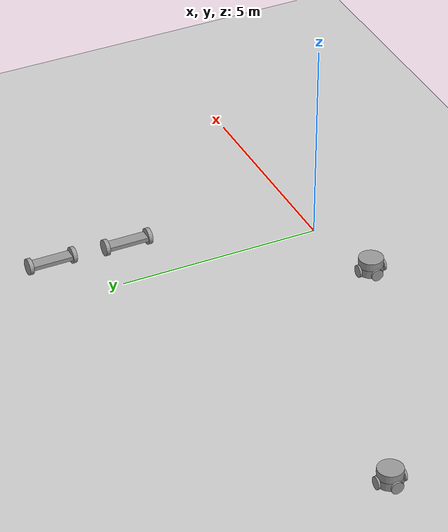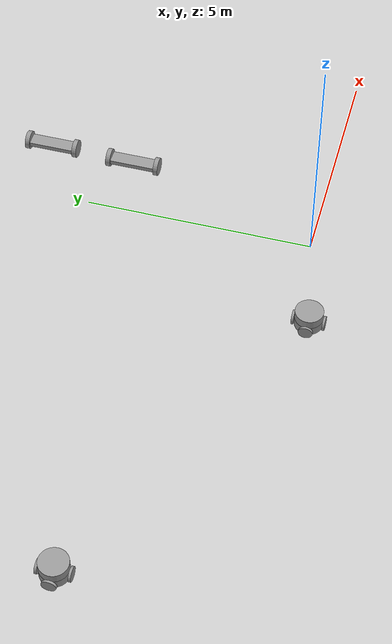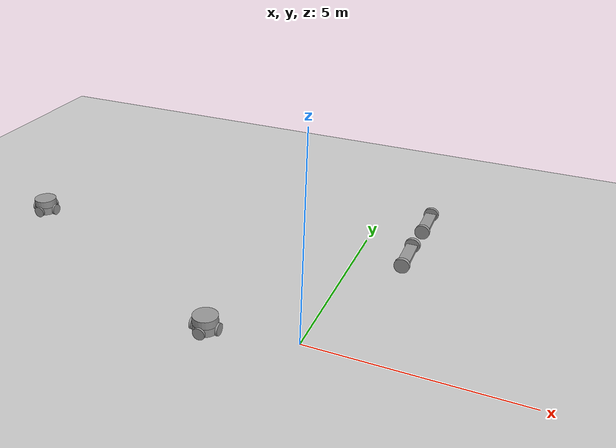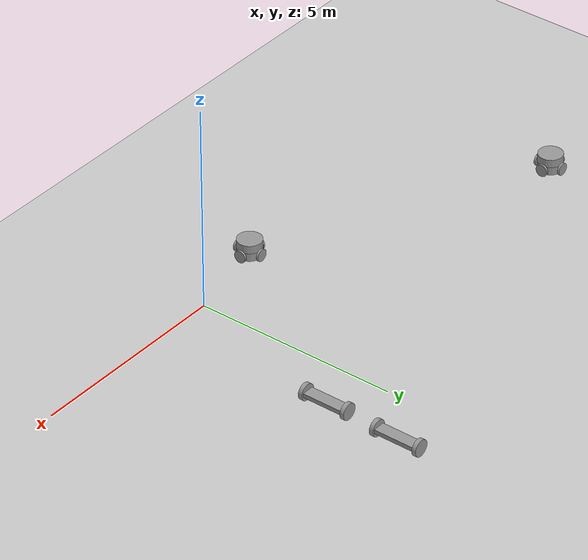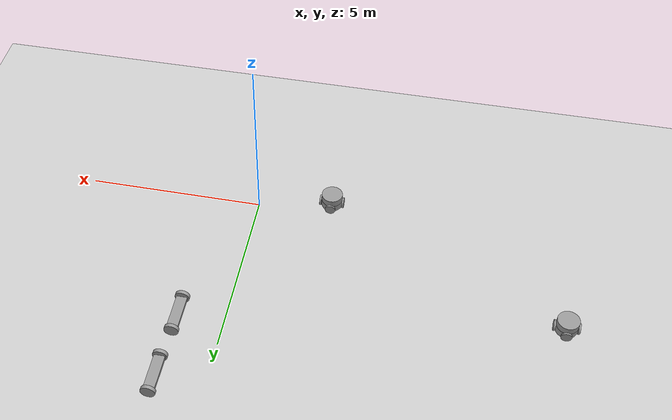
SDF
<sdf version="1.6">
 <world name="default">
  <plugin name="hello" filename="libhello.so"/>
  <light name="sun" type="directional">
   <pose>0 0 10 0 -0 0</pose>
   <diffuse>0.8 0.8 0.8 1</diffuse>
   <specular>0.2 0.2 0.2 1</specular>
   <attenuation>
    <range>1000</range>
    <constant>0.9</constant>
    <linear>0.01</linear>
    <quadratic>0.001</quadratic>
   </attenuation>
   <direction>-0.5 0.1 -0.9</direction>
  </light>
  <model name="ground_plane">
   <static>1</static>
   <link name="link">
    <collision name="collision">
     <geometry><plane><normal>0 0 1</normal><size>100 100</size></plane></geometry>
     <surface>
      <contact><collide_bitmask>65535</collide_bitmask></contact>
      <friction><ode><mu>100</mu><mu2>50</mu2></ode></friction>
     </surface>
    </collision>
    <visual name="visual">
     <cast_shadows>0</cast_shadows>
     <geometry><plane><normal>0 0 1</normal><size>100 100</size></plane></geometry>
     <material>
      <script><uri>file://media/materials/scripts/gazebo.material</uri><name>Gazebo/Grey</name></script>
     </material>
    </visual>
   </link>
  </model>
  <gravity>0 0 -9.8</gravity>
  <magnetic_field>6e-06 2.3e-05 -4.2e-05</magnetic_field>
  <atmosphere type="adiabatic"/>
  <physics name="default_physics" default="0" type="ode">
   <max_step_size>0.001</max_step_size>
   <real_time_factor>1</real_time_factor>
   <real_time_update_rate>1000</real_time_update_rate>
  </physics>
  <scene><ambient>0.4 0.4 0.4 1</ambient><background>0.7 0.7 0.7 1</background><shadows>1</shadows></scene>
  <audio><device>default</device></audio>
  <spherical_coordinates>
   <surface_model>EARTH_WGS84</surface_model>
   <latitude_deg>0</latitude_deg>
   <longitude_deg>0</longitude_deg>
   <elevation>0</elevation>
   <heading_deg>0</heading_deg>
  </spherical_coordinates>
  <model name="robot">
   <link name="link_1">
    <inertial>
     <mass>1</mass>
     <inertia>
      <ixx>0.166667</ixx>
      <ixy>0</ixy>
      <ixz>0</ixz>
      <iyy>0.166667</iyy>
      <iyz>0</iyz>
      <izz>0.166667</izz>
     </inertia>
    </inertial>
    <pose>0 0 0.2 0 -0 0</pose>
    <visual name="visual">
     <geometry><box><size>0.3 1 0.1</size></box></geometry>
     <material>
      <lighting>1</lighting>
      <script><uri>file://media/materials/scripts/gazebo.material</uri><name>Gazebo/Grey</name></script>
      <shader type="vertex"><normal_map>__default__</normal_map></shader>
      <ambient>0.3 0.3 0.3 1</ambient>
      <diffuse>0.7 0.7 0.7 1</diffuse>
      <specular>0.01 0.01 0.01 1</specular>
      <emissive>0 0 0 1</emissive>
     </material>
    </visual>
    <collision name="collision">
     <geometry><box><size>0.3 1 0.1</size></box></geometry>
     <surface>
      <friction>
       <ode><mu>1</mu><mu2>1</mu2><fdir1>0 0 0</fdir1><slip1>0</slip1><slip2>0</slip2></ode>
       <torsional>
        <coefficient>1</coefficient>
        <patch_radius>0</patch_radius>
        <surface_radius>0</surface_radius>
        <use_patch_radius>1</use_patch_radius>
        <ode><slip>0</slip></ode>
       </torsional>
      </friction>
      <bounce><restitution_coefficient>0</restitution_coefficient><threshold>1e+06</threshold></bounce>
      <contact>
       <collide_without_contact>0</collide_without_contact>
       <collide_without_contact_bitmask>1</collide_without_contact_bitmask>
       <collide_bitmask>1</collide_bitmask>
       <ode>
        <soft_cfm>0</soft_cfm>
        <soft_erp>0.2</soft_erp>
        <kp>1e+13</kp>
        <kd>1</kd>
        <max_vel>0.01</max_vel>
        <min_depth>0</min_depth>
       </ode>
       <bullet>
        <split_impulse>1</split_impulse>
        <split_impulse_penetration_threshold>-0.01</split_impulse_penetration_threshold>
        <soft_cfm>0</soft_cfm>
        <soft_erp>0.2</soft_erp>
        <kp>1e+13</kp>
        <kd>1</kd>
       </bullet>
      </contact>
     </surface>
    </collision>
   </link>
   <link name="link_2">
    <inertial>
     <mass>1</mass>
     <inertia><ixx>0.145833</ixx><ixy>0</ixy><ixz>0</ixz><iyy>0.145833</iyy><iyz>0</iyz><izz>0.125</izz></inertia>
    </inertial>
    <pose>0 -0.550019 0.200105 1.5707 -0 0</pose>
    <visual name="visual">
     <geometry><cylinder><radius>0.2</radius><length>0.1</length></cylinder></geometry>
     <material>
      <lighting>1</lighting>
      <script><uri>file://media/materials/scripts/gazebo.material</uri><name>Gazebo/Grey</name></script>
      <shader type="vertex"><normal_map>__default__</normal_map></shader>
      <ambient>0.3 0.3 0.3 1</ambient>
      <diffuse>0.7 0.7 0.7 1</diffuse>
      <specular>0.01 0.01 0.01 1</specular>
      <emissive>0 0 0 1</emissive>
     </material>
    </visual>
    <collision name="collision">
     <geometry><cylinder><radius>0.2</radius><length>0.1</length></cylinder></geometry>
     <surface>
      <friction>
       <ode><mu>1</mu><mu2>1</mu2><fdir1>0 0 0</fdir1><slip1>0</slip1><slip2>0</slip2></ode>
       <torsional>
        <coefficient>1</coefficient>
        <patch_radius>0</patch_radius>
        <surface_radius>0</surface_radius>
        <use_patch_radius>1</use_patch_radius>
        <ode><slip>0</slip></ode>
       </torsional>
      </friction>
      <bounce><restitution_coefficient>0</restitution_coefficient><threshold>1e+06</threshold></bounce>
      <contact>
       <collide_without_contact>0</collide_without_contact>
       <collide_without_contact_bitmask>1</collide_without_contact_bitmask>
       <collide_bitmask>1</collide_bitmask>
       <ode>
        <soft_cfm>0</soft_cfm>
        <soft_erp>0.2</soft_erp>
        <kp>1e+13</kp>
        <kd>1</kd>
        <max_vel>0.01</max_vel>
        <min_depth>0</min_depth>
       </ode>
       <bullet>
        <split_impulse>1</split_impulse>
        <split_impulse_penetration_threshold>-0.01</split_impulse_penetration_threshold>
        <soft_cfm>0</soft_cfm>
        <soft_erp>0.2</soft_erp>
        <kp>1e+13</kp>
        <kd>1</kd>
       </bullet>
      </contact>
     </surface>
    </collision>
   </link>
   <link name="link_2_clone_0">
    <inertial>
     <mass>1</mass>
     <inertia><ixx>0.145833</ixx><ixy>0</ixy><ixz>0</ixz><iyy>0.145833</iyy><iyz>0</iyz><izz>0.125</izz></inertia>
    </inertial>
    <pose>0 0.550019 0.200105 1.5707 -0 0</pose>
    <visual name="visual">
     <geometry><cylinder><radius>0.2</radius><length>0.1</length></cylinder></geometry>
     <material>
      <lighting>1</lighting>
      <script><uri>file://media/materials/scripts/gazebo.material</uri><name>Gazebo/Grey</name></script>
      <shader type="vertex"><normal_map>__default__</normal_map></shader>
      <ambient>0.3 0.3 0.3 1</ambient>
      <diffuse>0.7 0.7 0.7 1</diffuse>
      <specular>0.01 0.01 0.01 1</specular>
      <emissive>0 0 0 1</emissive>
     </material>
    </visual>
    <collision name="collision">
     <geometry><cylinder><radius>0.2</radius><length>0.1</length></cylinder></geometry>
     <surface>
      <friction>
       <ode><mu>1</mu><mu2>1</mu2><fdir1>0 0 0</fdir1><slip1>0</slip1><slip2>0</slip2></ode>
       <torsional>
        <coefficient>1</coefficient>
        <patch_radius>0</patch_radius>
        <surface_radius>0</surface_radius>
        <use_patch_radius>1</use_patch_radius>
        <ode><slip>0</slip></ode>
       </torsional>
      </friction>
      <bounce><restitution_coefficient>0</restitution_coefficient><threshold>1e+06</threshold></bounce>
      <contact>
       <collide_without_contact>0</collide_without_contact>
       <collide_without_contact_bitmask>1</collide_without_contact_bitmask>
       <collide_bitmask>1</collide_bitmask>
       <ode>
        <soft_cfm>0</soft_cfm>
        <soft_erp>0.2</soft_erp>
        <kp>1e+13</kp>
        <kd>1</kd>
        <max_vel>0.01</max_vel>
        <min_depth>0</min_depth>
       </ode>
       <bullet>
        <split_impulse>1</split_impulse>
        <split_impulse_penetration_threshold>-0.01</split_impulse_penetration_threshold>
        <soft_cfm>0</soft_cfm>
        <soft_erp>0.2</soft_erp>
        <kp>1e+13</kp>
        <kd>1</kd>
       </bullet>
      </contact>
     </surface>
    </collision>
   </link>
   <joint name="link_1_JOINT_0" type="revolute">
    <parent>link_1</parent>
    <child>link_2</child>
    <axis>
     <xyz>0 0 1</xyz>
     <use_parent_model_frame>0</use_parent_model_frame>
     <limit>
      <lower>-1.79769e+308</lower>
      <upper>1.79769e+308</upper>
      <effort>-1</effort>
      <velocity>-1</velocity>
     </limit>
     <dynamics>
      <spring_reference>0</spring_reference>
      <spring_stiffness>0</spring_stiffness>
      <damping>0</damping>
     </dynamics>
    </axis>
    <physics>
     <ode><limit><cfm>0</cfm><erp>0.2</erp></limit><suspension><cfm>0</cfm><erp>0.2</erp></suspension></ode>
    </physics>
   </joint>
   <joint name="link_1_JOINT_2" type="revolute">
    <parent>link_1</parent>
    <child>link_2_clone_0</child>
    <axis>
     <xyz>0 0 1</xyz>
     <use_parent_model_frame>0</use_parent_model_frame>
     <limit>
      <lower>-1.79769e+308</lower>
      <upper>1.79769e+308</upper>
      <effort>-1</effort>
      <velocity>-1</velocity>
     </limit>
     <dynamics>
      <spring_reference>0</spring_reference>
      <spring_stiffness>0</spring_stiffness>
      <damping>0</damping>
     </dynamics>
    </axis>
    <physics>
     <ode><limit><cfm>0</cfm><erp>0.2</erp></limit><suspension><cfm>0</cfm><erp>0.2</erp></suspension></ode>
    </physics>
   </joint>
   <static>0</static>
   <pose>1.26009 4.34485 -0.0001 0 -0 0</pose>
  </model>
  <model name="robot_0">
   <link name="link_1">
    <inertial>
     <mass>1</mass>
     <inertia>
      <ixx>0.166667</ixx>
      <ixy>0</ixy>
      <ixz>0</ixz>
      <iyy>0.166667</iyy>
      <iyz>0</iyz>
      <izz>0.166667</izz>
     </inertia>
    </inertial>
    <pose>0 0 0.2 0 -0 0</pose>
    <visual name="visual">
     <geometry><box><size>0.3 1 0.1</size></box></geometry>
     <material>
      <lighting>1</lighting>
      <script><uri>file://media/materials/scripts/gazebo.material</uri><name>Gazebo/Grey</name></script>
      <shader type="vertex"><normal_map>__default__</normal_map></shader>
      <ambient>0.3 0.3 0.3 1</ambient>
      <diffuse>0.7 0.7 0.7 1</diffuse>
      <specular>0.01 0.01 0.01 1</specular>
      <emissive>0 0 0 1</emissive>
     </material>
    </visual>
    <collision name="collision">
     <geometry><box><size>0.3 1 0.1</size></box></geometry>
     <surface>
      <friction>
       <ode><mu>1</mu><mu2>1</mu2><fdir1>0 0 0</fdir1><slip1>0</slip1><slip2>0</slip2></ode>
       <torsional>
        <coefficient>1</coefficient>
        <patch_radius>0</patch_radius>
        <surface_radius>0</surface_radius>
        <use_patch_radius>1</use_patch_radius>
        <ode><slip>0</slip></ode>
       </torsional>
      </friction>
      <bounce><restitution_coefficient>0</restitution_coefficient><threshold>1e+06</threshold></bounce>
      <contact>
       <collide_without_contact>0</collide_without_contact>
       <collide_without_contact_bitmask>1</collide_without_contact_bitmask>
       <collide_bitmask>1</collide_bitmask>
       <ode>
        <soft_cfm>0</soft_cfm>
        <soft_erp>0.2</soft_erp>
        <kp>1e+13</kp>
        <kd>1</kd>
        <max_vel>0.01</max_vel>
        <min_depth>0</min_depth>
       </ode>
       <bullet>
        <split_impulse>1</split_impulse>
        <split_impulse_penetration_threshold>-0.01</split_impulse_penetration_threshold>
        <soft_cfm>0</soft_cfm>
        <soft_erp>0.2</soft_erp>
        <kp>1e+13</kp>
        <kd>1</kd>
       </bullet>
      </contact>
     </surface>
    </collision>
   </link>
   <link name="link_2">
    <inertial>
     <mass>1</mass>
     <inertia><ixx>0.145833</ixx><ixy>0</ixy><ixz>0</ixz><iyy>0.145833</iyy><iyz>0</iyz><izz>0.125</izz></inertia>
    </inertial>
    <pose>0 -0.550019 0.200105 1.5707 -0 0</pose>
    <visual name="visual">
     <geometry><cylinder><radius>0.2</radius><length>0.1</length></cylinder></geometry>
     <material>
      <lighting>1</lighting>
      <script><uri>file://media/materials/scripts/gazebo.material</uri><name>Gazebo/Grey</name></script>
      <shader type="vertex"><normal_map>__default__</normal_map></shader>
      <ambient>0.3 0.3 0.3 1</ambient>
      <diffuse>0.7 0.7 0.7 1</diffuse>
      <specular>0.01 0.01 0.01 1</specular>
      <emissive>0 0 0 1</emissive>
     </material>
    </visual>
    <collision name="collision">
     <geometry><cylinder><radius>0.2</radius><length>0.1</length></cylinder></geometry>
     <surface>
      <friction>
       <ode><mu>1</mu><mu2>1</mu2><fdir1>0 0 0</fdir1><slip1>0</slip1><slip2>0</slip2></ode>
       <torsional>
        <coefficient>1</coefficient>
        <patch_radius>0</patch_radius>
        <surface_radius>0</surface_radius>
        <use_patch_radius>1</use_patch_radius>
        <ode><slip>0</slip></ode>
       </torsional>
      </friction>
      <bounce><restitution_coefficient>0</restitution_coefficient><threshold>1e+06</threshold></bounce>
      <contact>
       <collide_without_contact>0</collide_without_contact>
       <collide_without_contact_bitmask>1</collide_without_contact_bitmask>
       <collide_bitmask>1</collide_bitmask>
       <ode>
        <soft_cfm>0</soft_cfm>
        <soft_erp>0.2</soft_erp>
        <kp>1e+13</kp>
        <kd>1</kd>
        <max_vel>0.01</max_vel>
        <min_depth>0</min_depth>
       </ode>
       <bullet>
        <split_impulse>1</split_impulse>
        <split_impulse_penetration_threshold>-0.01</split_impulse_penetration_threshold>
        <soft_cfm>0</soft_cfm>
        <soft_erp>0.2</soft_erp>
        <kp>1e+13</kp>
        <kd>1</kd>
       </bullet>
      </contact>
     </surface>
    </collision>
   </link>
   <link name="link_2_clone_0">
    <inertial>
     <mass>1</mass>
     <inertia><ixx>0.145833</ixx><ixy>0</ixy><ixz>0</ixz><iyy>0.145833</iyy><iyz>0</iyz><izz>0.125</izz></inertia>
    </inertial>
    <pose>0 0.550019 0.200105 1.5707 -0 0</pose>
    <visual name="visual">
     <geometry><cylinder><radius>0.2</radius><length>0.1</length></cylinder></geometry>
     <material>
      <lighting>1</lighting>
      <script><uri>file://media/materials/scripts/gazebo.material</uri><name>Gazebo/Grey</name></script>
      <shader type="vertex"><normal_map>__default__</normal_map></shader>
      <ambient>0.3 0.3 0.3 1</ambient>
      <diffuse>0.7 0.7 0.7 1</diffuse>
      <specular>0.01 0.01 0.01 1</specular>
      <emissive>0 0 0 1</emissive>
     </material>
    </visual>
    <collision name="collision">
     <geometry><cylinder><radius>0.2</radius><length>0.1</length></cylinder></geometry>
     <surface>
      <friction>
       <ode><mu>1</mu><mu2>1</mu2><fdir1>0 0 0</fdir1><slip1>0</slip1><slip2>0</slip2></ode>
       <torsional>
        <coefficient>1</coefficient>
        <patch_radius>0</patch_radius>
        <surface_radius>0</surface_radius>
        <use_patch_radius>1</use_patch_radius>
        <ode><slip>0</slip></ode>
       </torsional>
      </friction>
      <bounce><restitution_coefficient>0</restitution_coefficient><threshold>1e+06</threshold></bounce>
      <contact>
       <collide_without_contact>0</collide_without_contact>
       <collide_without_contact_bitmask>1</collide_without_contact_bitmask>
       <collide_bitmask>1</collide_bitmask>
       <ode>
        <soft_cfm>0</soft_cfm>
        <soft_erp>0.2</soft_erp>
        <kp>1e+13</kp>
        <kd>1</kd>
        <max_vel>0.01</max_vel>
        <min_depth>0</min_depth>
       </ode>
       <bullet>
        <split_impulse>1</split_impulse>
        <split_impulse_penetration_threshold>-0.01</split_impulse_penetration_threshold>
        <soft_cfm>0</soft_cfm>
        <soft_erp>0.2</soft_erp>
        <kp>1e+13</kp>
        <kd>1</kd>
       </bullet>
      </contact>
     </surface>
    </collision>
   </link>
   <joint name="link_1_JOINT_0" type="revolute">
    <parent>link_1</parent>
    <child>link_2</child>
    <axis>
     <xyz>0 0 1</xyz>
     <use_parent_model_frame>0</use_parent_model_frame>
     <limit>
      <lower>-1.79769e+308</lower>
      <upper>1.79769e+308</upper>
      <effort>-1</effort>
      <velocity>-1</velocity>
     </limit>
     <dynamics>
      <spring_reference>0</spring_reference>
      <spring_stiffness>0</spring_stiffness>
      <damping>0</damping>
     </dynamics>
    </axis>
    <physics>
     <ode><limit><cfm>0</cfm><erp>0.2</erp></limit><suspension><cfm>0</cfm><erp>0.2</erp></suspension></ode>
    </physics>
   </joint>
   <joint name="link_1_JOINT_2" type="revolute">
    <parent>link_1</parent>
    <child>link_2_clone_0</child>
    <axis>
     <xyz>0 0 1</xyz>
     <use_parent_model_frame>0</use_parent_model_frame>
     <limit>
      <lower>-1.79769e+308</lower>
      <upper>1.79769e+308</upper>
      <effort>-1</effort>
      <velocity>-1</velocity>
     </limit>
     <dynamics>
      <spring_reference>0</spring_reference>
      <spring_stiffness>0</spring_stiffness>
      <damping>0</damping>
     </dynamics>
    </axis>
    <physics>
     <ode><limit><cfm>0</cfm><erp>0.2</erp></limit><suspension><cfm>0</cfm><erp>0.2</erp></suspension></ode>
    </physics>
   </joint>
   <static>0</static>
   <pose>1.3243 6.26393 -0.000102 4e-06 -0 0</pose>
  </model>
  <model name="myrealrobot">
   <link name="link_0">
    <inertial>
     <mass>1</mass>
     <inertia><ixx>0.145833</ixx><ixy>0</ixy><ixz>0</ixz><iyy>0.145833</iyy><iyz>0</iyz><izz>0.125</izz></inertia>
    </inertial>
    <pose>0.129042 0.699504 0.35 0 -0 0</pose>
    <visual name="visual">
     <geometry><cylinder><radius>0.3</radius><length>0.2</length></cylinder></geometry>
     <material>
      <lighting>1</lighting>
      <script><uri>file://media/materials/scripts/gazebo.material</uri><name>Gazebo/Grey</name></script>
      <shader type="vertex"><normal_map>__default__</normal_map></shader>
      <ambient>0.3 0.3 0.3 1</ambient>
      <diffuse>0.7 0.7 0.7 1</diffuse>
      <specular>0.01 0.01 0.01 1</specular>
      <emissive>0 0 0 1</emissive>
     </material>
    </visual>
    <collision name="collision">
     <geometry><cylinder><radius>0.3</radius><length>0.2</length></cylinder></geometry>
     <surface>
      <friction>
       <ode><mu>1</mu><mu2>1</mu2><fdir1>0 0 0</fdir1><slip1>0</slip1><slip2>0</slip2></ode>
       <torsional>
        <coefficient>1</coefficient>
        <patch_radius>0</patch_radius>
        <surface_radius>0</surface_radius>
        <use_patch_radius>1</use_patch_radius>
        <ode><slip>0</slip></ode>
       </torsional>
      </friction>
      <bounce><restitution_coefficient>0</restitution_coefficient><threshold>1e+06</threshold></bounce>
      <contact>
       <collide_without_contact>0</collide_without_contact>
       <collide_without_contact_bitmask>1</collide_without_contact_bitmask>
       <collide_bitmask>1</collide_bitmask>
       <ode>
        <soft_cfm>0</soft_cfm>
        <soft_erp>0.2</soft_erp>
        <kp>1e+13</kp>
        <kd>1</kd>
        <max_vel>0.01</max_vel>
        <min_depth>0</min_depth>
       </ode>
       <bullet>
        <split_impulse>1</split_impulse>
        <split_impulse_penetration_threshold>-0.01</split_impulse_penetration_threshold>
        <soft_cfm>0</soft_cfm>
        <soft_erp>0.2</soft_erp>
        <kp>1e+13</kp>
        <kd>1</kd>
       </bullet>
      </contact>
     </surface>
    </collision>
   </link>
   <link name="link_0_clone">
    <inertial>
     <mass>1</mass>
     <inertia><ixx>0.145833</ixx><ixy>0</ixy><ixz>0</ixz><iyy>0.145833</iyy><iyz>0</iyz><izz>0.125</izz></inertia>
    </inertial>
    <pose>0.129042 0.699504 0.15 0 -0 0</pose>
    <visual name="visual">
     <geometry><cylinder><radius>0.3</radius><length>0.2</length></cylinder></geometry>
     <material>
      <lighting>1</lighting>
      <script><uri>file://media/materials/scripts/gazebo.material</uri><name>Gazebo/Grey</name></script>
      <shader type="vertex"><normal_map>__default__</normal_map></shader>
      <ambient>0.3 0.3 0.3 1</ambient>
      <diffuse>0.7 0.7 0.7 1</diffuse>
      <specular>0.01 0.01 0.01 1</specular>
      <emissive>0 0 0 1</emissive>
     </material>
    </visual>
    <collision name="collision">
     <geometry><cylinder><radius>0.3</radius><length>0.2</length></cylinder></geometry>
     <surface>
      <friction>
       <ode><mu>1</mu><mu2>1</mu2><fdir1>0 0 0</fdir1><slip1>0</slip1><slip2>0</slip2></ode>
       <torsional>
        <coefficient>1</coefficient>
        <patch_radius>0</patch_radius>
        <surface_radius>0</surface_radius>
        <use_patch_radius>1</use_patch_radius>
        <ode><slip>0</slip></ode>
       </torsional>
      </friction>
      <bounce><restitution_coefficient>0</restitution_coefficient><threshold>1e+06</threshold></bounce>
      <contact>
       <collide_without_contact>0</collide_without_contact>
       <collide_without_contact_bitmask>1</collide_without_contact_bitmask>
       <collide_bitmask>1</collide_bitmask>
       <ode>
        <soft_cfm>0</soft_cfm>
        <soft_erp>0.2</soft_erp>
        <kp>1e+13</kp>
        <kd>1</kd>
        <max_vel>0.01</max_vel>
        <min_depth>0</min_depth>
       </ode>
       <bullet>
        <split_impulse>1</split_impulse>
        <split_impulse_penetration_threshold>-0.01</split_impulse_penetration_threshold>
        <soft_cfm>0</soft_cfm>
        <soft_erp>0.2</soft_erp>
        <kp>1e+13</kp>
        <kd>1</kd>
       </bullet>
      </contact>
     </surface>
    </collision>
   </link>
   <link name="link_2">
    <inertial>
     <mass>1</mass>
     <inertia><ixx>0.145833</ixx><ixy>0</ixy><ixz>0</ixz><iyy>0.145833</iyy><iyz>0</iyz><izz>0.125</izz></inertia>
    </inertial>
    <pose>0.129042 0.37449 0.15 1.5707 -0 0</pose>
    <visual name="visual">
     <geometry><cylinder><radius>0.15</radius><length>0.05</length></cylinder></geometry>
     <material>
      <lighting>1</lighting>
      <script><uri>file://media/materials/scripts/gazebo.material</uri><name>Gazebo/Grey</name></script>
      <shader type="vertex"><normal_map>__default__</normal_map></shader>
      <ambient>0.3 0.3 0.3 1</ambient>
      <diffuse>0.7 0.7 0.7 1</diffuse>
      <specular>0.01 0.01 0.01 1</specular>
      <emissive>0 0 0 1</emissive>
     </material>
    </visual>
    <collision name="collision">
     <geometry><cylinder><radius>0.15</radius><length>0.05</length></cylinder></geometry>
     <surface>
      <friction>
       <ode><mu>1</mu><mu2>1</mu2><fdir1>0 0 0</fdir1><slip1>0</slip1><slip2>0</slip2></ode>
       <torsional>
        <coefficient>1</coefficient>
        <patch_radius>0</patch_radius>
        <surface_radius>0</surface_radius>
        <use_patch_radius>1</use_patch_radius>
        <ode><slip>0</slip></ode>
       </torsional>
      </friction>
      <bounce><restitution_coefficient>0</restitution_coefficient><threshold>1e+06</threshold></bounce>
      <contact>
       <collide_without_contact>0</collide_without_contact>
       <collide_without_contact_bitmask>1</collide_without_contact_bitmask>
       <collide_bitmask>1</collide_bitmask>
       <ode>
        <soft_cfm>0</soft_cfm>
        <soft_erp>0.2</soft_erp>
        <kp>1e+13</kp>
        <kd>1</kd>
        <max_vel>0.01</max_vel>
        <min_depth>0</min_depth>
       </ode>
       <bullet>
        <split_impulse>1</split_impulse>
        <split_impulse_penetration_threshold>-0.01</split_impulse_penetration_threshold>
        <soft_cfm>0</soft_cfm>
        <soft_erp>0.2</soft_erp>
        <kp>1e+13</kp>
        <kd>1</kd>
       </bullet>
      </contact>
     </surface>
    </collision>
   </link>
   <link name="link_2_clone">
    <inertial>
     <mass>1</mass>
     <inertia><ixx>0.145833</ixx><ixy>0</ixy><ixz>0</ixz><iyy>0.145833</iyy><iyz>0</iyz><izz>0.125</izz></inertia>
    </inertial>
    <pose>0.129042 1.02452 0.15 1.5707 -0 0</pose>
    <visual name="visual">
     <geometry><cylinder><radius>0.15</radius><length>0.05</length></cylinder></geometry>
     <material>
      <lighting>1</lighting>
      <script><uri>file://media/materials/scripts/gazebo.material</uri><name>Gazebo/Grey</name></script>
      <shader type="vertex"><normal_map>__default__</normal_map></shader>
      <ambient>0.3 0.3 0.3 1</ambient>
      <diffuse>0.7 0.7 0.7 1</diffuse>
      <specular>0.01 0.01 0.01 1</specular>
      <emissive>0 0 0 1</emissive>
     </material>
    </visual>
    <collision name="collision">
     <geometry><cylinder><radius>0.15</radius><length>0.05</length></cylinder></geometry>
     <surface>
      <friction>
       <ode><mu>1</mu><mu2>1</mu2><fdir1>0 0 0</fdir1><slip1>0</slip1><slip2>0</slip2></ode>
       <torsional>
        <coefficient>1</coefficient>
        <patch_radius>0</patch_radius>
        <surface_radius>0</surface_radius>
        <use_patch_radius>1</use_patch_radius>
        <ode><slip>0</slip></ode>
       </torsional>
      </friction>
      <bounce><restitution_coefficient>0</restitution_coefficient><threshold>1e+06</threshold></bounce>
      <contact>
       <collide_without_contact>0</collide_without_contact>
       <collide_without_contact_bitmask>1</collide_without_contact_bitmask>
       <collide_bitmask>1</collide_bitmask>
       <ode>
        <soft_cfm>0</soft_cfm>
        <soft_erp>0.2</soft_erp>
        <kp>1e+13</kp>
        <kd>1</kd>
        <max_vel>0.01</max_vel>
        <min_depth>0</min_depth>
       </ode>
       <bullet>
        <split_impulse>1</split_impulse>
        <split_impulse_penetration_threshold>-0.01</split_impulse_penetration_threshold>
        <soft_cfm>0</soft_cfm>
        <soft_erp>0.2</soft_erp>
        <kp>1e+13</kp>
        <kd>1</kd>
       </bullet>
      </contact>
     </surface>
    </collision>
   </link>
   <link name="link_2_clone_clone">
    <inertial>
     <mass>1</mass>
     <inertia><ixx>0.145833</ixx><ixy>0</ixy><ixz>0</ixz><iyy>0.145833</iyy><iyz>0</iyz><izz>0.125</izz></inertia>
    </inertial>
    <pose>-0.195987 0.699504 0.15 1.5707 0 1.5707</pose>
    <visual name="visual">
     <geometry><cylinder><radius>0.15</radius><length>0.05</length></cylinder></geometry>
     <material>
      <lighting>1</lighting>
      <script><uri>file://media/materials/scripts/gazebo.material</uri><name>Gazebo/Grey</name></script>
      <shader type="vertex"><normal_map>__default__</normal_map></shader>
      <ambient>0.3 0.3 0.3 1</ambient>
      <diffuse>0.7 0.7 0.7 1</diffuse>
      <specular>0.01 0.01 0.01 1</specular>
      <emissive>0 0 0 1</emissive>
     </material>
    </visual>
    <collision name="collision">
     <geometry><cylinder><radius>0.15</radius><length>0.05</length></cylinder></geometry>
     <surface>
      <friction>
       <ode><mu>1</mu><mu2>1</mu2><fdir1>0 0 0</fdir1><slip1>0</slip1><slip2>0</slip2></ode>
       <torsional>
        <coefficient>1</coefficient>
        <patch_radius>0</patch_radius>
        <surface_radius>0</surface_radius>
        <use_patch_radius>1</use_patch_radius>
        <ode><slip>0</slip></ode>
       </torsional>
      </friction>
      <bounce><restitution_coefficient>0</restitution_coefficient><threshold>1e+06</threshold></bounce>
      <contact>
       <collide_without_contact>0</collide_without_contact>
       <collide_without_contact_bitmask>1</collide_without_contact_bitmask>
       <collide_bitmask>1</collide_bitmask>
       <ode>
        <soft_cfm>0</soft_cfm>
        <soft_erp>0.2</soft_erp>
        <kp>1e+13</kp>
        <kd>1</kd>
        <max_vel>0.01</max_vel>
        <min_depth>0</min_depth>
       </ode>
       <bullet>
        <split_impulse>1</split_impulse>
        <split_impulse_penetration_threshold>-0.01</split_impulse_penetration_threshold>
        <soft_cfm>0</soft_cfm>
        <soft_erp>0.2</soft_erp>
        <kp>1e+13</kp>
        <kd>1</kd>
       </bullet>
      </contact>
     </surface>
    </collision>
   </link>
   <link name="link_2_clone_clone_clone">
    <inertial>
     <mass>1</mass>
     <inertia><ixx>0.145833</ixx><ixy>0</ixy><ixz>0</ixz><iyy>0.145833</iyy><iyz>0</iyz><izz>0.125</izz></inertia>
    </inertial>
    <pose>0.454071 0.699504 0.15 1.5707 0 1.5707</pose>
    <visual name="visual">
     <geometry><cylinder><radius>0.15</radius><length>0.05</length></cylinder></geometry>
     <material>
      <lighting>1</lighting>
      <script><uri>file://media/materials/scripts/gazebo.material</uri><name>Gazebo/Grey</name></script>
      <shader type="vertex"><normal_map>__default__</normal_map></shader>
      <ambient>0.3 0.3 0.3 1</ambient>
      <diffuse>0.7 0.7 0.7 1</diffuse>
      <specular>0.01 0.01 0.01 1</specular>
      <emissive>0 0 0 1</emissive>
     </material>
    </visual>
    <collision name="collision">
     <geometry><cylinder><radius>0.15</radius><length>0.05</length></cylinder></geometry>
     <surface>
      <friction>
       <ode><mu>1</mu><mu2>1</mu2><fdir1>0 0 0</fdir1><slip1>0</slip1><slip2>0</slip2></ode>
       <torsional>
        <coefficient>1</coefficient>
        <patch_radius>0</patch_radius>
        <surface_radius>0</surface_radius>
        <use_patch_radius>1</use_patch_radius>
        <ode><slip>0</slip></ode>
       </torsional>
      </friction>
      <bounce><restitution_coefficient>0</restitution_coefficient><threshold>1e+06</threshold></bounce>
      <contact>
       <collide_without_contact>0</collide_without_contact>
       <collide_without_contact_bitmask>1</collide_without_contact_bitmask>
       <collide_bitmask>1</collide_bitmask>
       <ode>
        <soft_cfm>0</soft_cfm>
        <soft_erp>0.2</soft_erp>
        <kp>1e+13</kp>
        <kd>1</kd>
        <max_vel>0.01</max_vel>
        <min_depth>0</min_depth>
       </ode>
       <bullet>
        <split_impulse>1</split_impulse>
        <split_impulse_penetration_threshold>-0.01</split_impulse_penetration_threshold>
        <soft_cfm>0</soft_cfm>
        <soft_erp>0.2</soft_erp>
        <kp>1e+13</kp>
        <kd>1</kd>
       </bullet>
      </contact>
     </surface>
    </collision>
   </link>
   <joint name="link_0_JOINT_0" type="revolute">
    <parent>link_0</parent>
    <child>link_0_clone</child>
    <axis>
     <xyz>0 0 1</xyz>
     <use_parent_model_frame>0</use_parent_model_frame>
     <limit>
      <lower>-1.79769e+308</lower>
      <upper>1.79769e+308</upper>
      <effort>-1</effort>
      <velocity>-1</velocity>
     </limit>
     <dynamics>
      <spring_reference>0</spring_reference>
      <spring_stiffness>0</spring_stiffness>
      <damping>0</damping>
     </dynamics>
    </axis>
    <physics>
     <ode><limit><cfm>0</cfm><erp>0.2</erp></limit><suspension><cfm>0</cfm><erp>0.2</erp></suspension></ode>
    </physics>
   </joint>
   <joint name="link_0_clone_JOINT_1" type="revolute">
    <parent>link_0_clone</parent>
    <child>link_2</child>
    <axis>
     <xyz>0 0 1</xyz>
     <use_parent_model_frame>0</use_parent_model_frame>
     <limit>
      <lower>-1.79769e+308</lower>
      <upper>1.79769e+308</upper>
      <effort>-1</effort>
      <velocity>-1</velocity>
     </limit>
     <dynamics>
      <spring_reference>0</spring_reference>
      <spring_stiffness>0</spring_stiffness>
      <damping>0</damping>
      <friction>0</friction>
     </dynamics>
    </axis>
    <physics>
     <ode><limit><cfm>0</cfm><erp>0.2</erp></limit><suspension><cfm>0</cfm><erp>0.2</erp></suspension></ode>
    </physics>
   </joint>
   <joint name="link_0_clone_JOINT_2" type="revolute">
    <parent>link_0_clone</parent>
    <child>link_2_clone</child>
    <axis>
     <xyz>0 0 1</xyz>
     <use_parent_model_frame>0</use_parent_model_frame>
     <limit>
      <lower>-1.79769e+308</lower>
      <upper>1.79769e+308</upper>
      <effort>-1</effort>
      <velocity>-1</velocity>
     </limit>
     <dynamics>
      <spring_reference>0</spring_reference>
      <spring_stiffness>0</spring_stiffness>
      <damping>0</damping>
     </dynamics>
    </axis>
    <physics>
     <ode><limit><cfm>0</cfm><erp>0.2</erp></limit><suspension><cfm>0</cfm><erp>0.2</erp></suspension></ode>
    </physics>
   </joint>
   <joint name="link_0_clone_JOINT_3" type="revolute">
    <parent>link_0_clone</parent>
    <child>link_2_clone_clone</child>
    <axis>
     <xyz>0 0 1</xyz>
     <use_parent_model_frame>0</use_parent_model_frame>
     <limit>
      <lower>-1.79769e+308</lower>
      <upper>1.79769e+308</upper>
      <effort>-1</effort>
      <velocity>-1</velocity>
     </limit>
     <dynamics>
      <spring_reference>0</spring_reference>
      <spring_stiffness>0</spring_stiffness>
      <damping>0</damping>
     </dynamics>
    </axis>
    <physics>
     <ode><limit><cfm>0</cfm><erp>0.2</erp></limit><suspension><cfm>0</cfm><erp>0.2</erp></suspension></ode>
    </physics>
   </joint>
   <joint name="link_0_clone_JOINT_4" type="revolute">
    <parent>link_0_clone</parent>
    <child>link_2_clone_clone_clone</child>
    <axis>
     <xyz>0 0 1</xyz>
     <use_parent_model_frame>0</use_parent_model_frame>
     <limit>
      <lower>-1.79769e+308</lower>
      <upper>1.79769e+308</upper>
      <effort>-1</effort>
      <velocity>-1</velocity>
     </limit>
     <dynamics>
      <spring_reference>0</spring_reference>
      <spring_stiffness>0</spring_stiffness>
      <damping>0</damping>
     </dynamics>
    </axis>
    <physics>
     <ode><limit><cfm>0</cfm><erp>0.2</erp></limit><suspension><cfm>0</cfm><erp>0.2</erp></suspension></ode>
    </physics>
   </joint>
   <static>0</static>
   <pose>-2.21584 -1.11275 -1e-06 4e-06 4e-06 1e-06</pose>
  </model>
  <model name="myrealrobot_0">
   <link name="link_0">
    <inertial>
     <mass>1</mass>
     <inertia><ixx>0.145833</ixx><ixy>0</ixy><ixz>0</ixz><iyy>0.145833</iyy><iyz>0</iyz><izz>0.125</izz></inertia>
    </inertial>
    <pose>0.129042 0.699504 0.35 0 -0 0</pose>
    <visual name="visual">
     <geometry><cylinder><radius>0.3</radius><length>0.2</length></cylinder></geometry>
     <material>
      <lighting>1</lighting>
      <script><uri>file://media/materials/scripts/gazebo.material</uri><name>Gazebo/Grey</name></script>
      <shader type="vertex"><normal_map>__default__</normal_map></shader>
      <ambient>0.3 0.3 0.3 1</ambient>
      <diffuse>0.7 0.7 0.7 1</diffuse>
      <specular>0.01 0.01 0.01 1</specular>
      <emissive>0 0 0 1</emissive>
     </material>
    </visual>
    <collision name="collision">
     <geometry><cylinder><radius>0.3</radius><length>0.2</length></cylinder></geometry>
     <surface>
      <friction>
       <ode><mu>1</mu><mu2>1</mu2><fdir1>0 0 0</fdir1><slip1>0</slip1><slip2>0</slip2></ode>
       <torsional>
        <coefficient>1</coefficient>
        <patch_radius>0</patch_radius>
        <surface_radius>0</surface_radius>
        <use_patch_radius>1</use_patch_radius>
        <ode><slip>0</slip></ode>
       </torsional>
      </friction>
      <bounce><restitution_coefficient>0</restitution_coefficient><threshold>1e+06</threshold></bounce>
      <contact>
       <collide_without_contact>0</collide_without_contact>
       <collide_without_contact_bitmask>1</collide_without_contact_bitmask>
       <collide_bitmask>1</collide_bitmask>
       <ode>
        <soft_cfm>0</soft_cfm>
        <soft_erp>0.2</soft_erp>
        <kp>1e+13</kp>
        <kd>1</kd>
        <max_vel>0.01</max_vel>
        <min_depth>0</min_depth>
       </ode>
       <bullet>
        <split_impulse>1</split_impulse>
        <split_impulse_penetration_threshold>-0.01</split_impulse_penetration_threshold>
        <soft_cfm>0</soft_cfm>
        <soft_erp>0.2</soft_erp>
        <kp>1e+13</kp>
        <kd>1</kd>
       </bullet>
      </contact>
     </surface>
    </collision>
   </link>
   <link name="link_0_clone">
    <inertial>
     <mass>1</mass>
     <inertia><ixx>0.145833</ixx><ixy>0</ixy><ixz>0</ixz><iyy>0.145833</iyy><iyz>0</iyz><izz>0.125</izz></inertia>
    </inertial>
    <pose>0.129042 0.699504 0.15 0 -0 0</pose>
    <visual name="visual">
     <geometry><cylinder><radius>0.3</radius><length>0.2</length></cylinder></geometry>
     <material>
      <lighting>1</lighting>
      <script><uri>file://media/materials/scripts/gazebo.material</uri><name>Gazebo/Grey</name></script>
      <shader type="vertex"><normal_map>__default__</normal_map></shader>
      <ambient>0.3 0.3 0.3 1</ambient>
      <diffuse>0.7 0.7 0.7 1</diffuse>
      <specular>0.01 0.01 0.01 1</specular>
      <emissive>0 0 0 1</emissive>
     </material>
    </visual>
    <collision name="collision">
     <geometry><cylinder><radius>0.3</radius><length>0.2</length></cylinder></geometry>
     <surface>
      <friction>
       <ode><mu>1</mu><mu2>1</mu2><fdir1>0 0 0</fdir1><slip1>0</slip1><slip2>0</slip2></ode>
       <torsional>
        <coefficient>1</coefficient>
        <patch_radius>0</patch_radius>
        <surface_radius>0</surface_radius>
        <use_patch_radius>1</use_patch_radius>
        <ode><slip>0</slip></ode>
       </torsional>
      </friction>
      <bounce><restitution_coefficient>0</restitution_coefficient><threshold>1e+06</threshold></bounce>
      <contact>
       <collide_without_contact>0</collide_without_contact>
       <collide_without_contact_bitmask>1</collide_without_contact_bitmask>
       <collide_bitmask>1</collide_bitmask>
       <ode>
        <soft_cfm>0</soft_cfm>
        <soft_erp>0.2</soft_erp>
        <kp>1e+13</kp>
        <kd>1</kd>
        <max_vel>0.01</max_vel>
        <min_depth>0</min_depth>
       </ode>
       <bullet>
        <split_impulse>1</split_impulse>
        <split_impulse_penetration_threshold>-0.01</split_impulse_penetration_threshold>
        <soft_cfm>0</soft_cfm>
        <soft_erp>0.2</soft_erp>
        <kp>1e+13</kp>
        <kd>1</kd>
       </bullet>
      </contact>
     </surface>
    </collision>
   </link>
   <link name="link_2">
    <inertial>
     <mass>1</mass>
     <inertia><ixx>0.145833</ixx><ixy>0</ixy><ixz>0</ixz><iyy>0.145833</iyy><iyz>0</iyz><izz>0.125</izz></inertia>
    </inertial>
    <pose>0.129042 0.37449 0.15 1.5707 -0 0</pose>
    <visual name="visual">
     <geometry><cylinder><radius>0.15</radius><length>0.05</length></cylinder></geometry>
     <material>
      <lighting>1</lighting>
      <script><uri>file://media/materials/scripts/gazebo.material</uri><name>Gazebo/Grey</name></script>
      <shader type="vertex"><normal_map>__default__</normal_map></shader>
      <ambient>0.3 0.3 0.3 1</ambient>
      <diffuse>0.7 0.7 0.7 1</diffuse>
      <specular>0.01 0.01 0.01 1</specular>
      <emissive>0 0 0 1</emissive>
     </material>
    </visual>
    <collision name="collision">
     <geometry><cylinder><radius>0.15</radius><length>0.05</length></cylinder></geometry>
     <surface>
      <friction>
       <ode><mu>1</mu><mu2>1</mu2><fdir1>0 0 0</fdir1><slip1>0</slip1><slip2>0</slip2></ode>
       <torsional>
        <coefficient>1</coefficient>
        <patch_radius>0</patch_radius>
        <surface_radius>0</surface_radius>
        <use_patch_radius>1</use_patch_radius>
        <ode><slip>0</slip></ode>
       </torsional>
      </friction>
      <bounce><restitution_coefficient>0</restitution_coefficient><threshold>1e+06</threshold></bounce>
      <contact>
       <collide_without_contact>0</collide_without_contact>
       <collide_without_contact_bitmask>1</collide_without_contact_bitmask>
       <collide_bitmask>1</collide_bitmask>
       <ode>
        <soft_cfm>0</soft_cfm>
        <soft_erp>0.2</soft_erp>
        <kp>1e+13</kp>
        <kd>1</kd>
        <max_vel>0.01</max_vel>
        <min_depth>0</min_depth>
       </ode>
       <bullet>
        <split_impulse>1</split_impulse>
        <split_impulse_penetration_threshold>-0.01</split_impulse_penetration_threshold>
        <soft_cfm>0</soft_cfm>
        <soft_erp>0.2</soft_erp>
        <kp>1e+13</kp>
        <kd>1</kd>
       </bullet>
      </contact>
     </surface>
    </collision>
   </link>
   <link name="link_2_clone">
    <inertial>
     <mass>1</mass>
     <inertia><ixx>0.145833</ixx><ixy>0</ixy><ixz>0</ixz><iyy>0.145833</iyy><iyz>0</iyz><izz>0.125</izz></inertia>
    </inertial>
    <pose>0.129042 1.02452 0.15 1.5707 -0 0</pose>
    <visual name="visual">
     <geometry><cylinder><radius>0.15</radius><length>0.05</length></cylinder></geometry>
     <material>
      <lighting>1</lighting>
      <script><uri>file://media/materials/scripts/gazebo.material</uri><name>Gazebo/Grey</name></script>
      <shader type="vertex"><normal_map>__default__</normal_map></shader>
      <ambient>0.3 0.3 0.3 1</ambient>
      <diffuse>0.7 0.7 0.7 1</diffuse>
      <specular>0.01 0.01 0.01 1</specular>
      <emissive>0 0 0 1</emissive>
     </material>
    </visual>
    <collision name="collision">
     <geometry><cylinder><radius>0.15</radius><length>0.05</length></cylinder></geometry>
     <surface>
      <friction>
       <ode><mu>1</mu><mu2>1</mu2><fdir1>0 0 0</fdir1><slip1>0</slip1><slip2>0</slip2></ode>
       <torsional>
        <coefficient>1</coefficient>
        <patch_radius>0</patch_radius>
        <surface_radius>0</surface_radius>
        <use_patch_radius>1</use_patch_radius>
        <ode><slip>0</slip></ode>
       </torsional>
      </friction>
      <bounce><restitution_coefficient>0</restitution_coefficient><threshold>1e+06</threshold></bounce>
      <contact>
       <collide_without_contact>0</collide_without_contact>
       <collide_without_contact_bitmask>1</collide_without_contact_bitmask>
       <collide_bitmask>1</collide_bitmask>
       <ode>
        <soft_cfm>0</soft_cfm>
        <soft_erp>0.2</soft_erp>
        <kp>1e+13</kp>
        <kd>1</kd>
        <max_vel>0.01</max_vel>
        <min_depth>0</min_depth>
       </ode>
       <bullet>
        <split_impulse>1</split_impulse>
        <split_impulse_penetration_threshold>-0.01</split_impulse_penetration_threshold>
        <soft_cfm>0</soft_cfm>
        <soft_erp>0.2</soft_erp>
        <kp>1e+13</kp>
        <kd>1</kd>
       </bullet>
      </contact>
     </surface>
    </collision>
   </link>
   <link name="link_2_clone_clone">
    <inertial>
     <mass>1</mass>
     <inertia><ixx>0.145833</ixx><ixy>0</ixy><ixz>0</ixz><iyy>0.145833</iyy><iyz>0</iyz><izz>0.125</izz></inertia>
    </inertial>
    <pose>-0.195987 0.699504 0.15 1.5707 0 1.5707</pose>
    <visual name="visual">
     <geometry><cylinder><radius>0.15</radius><length>0.05</length></cylinder></geometry>
     <material>
      <lighting>1</lighting>
      <script><uri>file://media/materials/scripts/gazebo.material</uri><name>Gazebo/Grey</name></script>
      <shader type="vertex"><normal_map>__default__</normal_map></shader>
      <ambient>0.3 0.3 0.3 1</ambient>
      <diffuse>0.7 0.7 0.7 1</diffuse>
      <specular>0.01 0.01 0.01 1</specular>
      <emissive>0 0 0 1</emissive>
     </material>
    </visual>
    <collision name="collision">
     <geometry><cylinder><radius>0.15</radius><length>0.05</length></cylinder></geometry>
     <surface>
      <friction>
       <ode><mu>1</mu><mu2>1</mu2><fdir1>0 0 0</fdir1><slip1>0</slip1><slip2>0</slip2></ode>
       <torsional>
        <coefficient>1</coefficient>
        <patch_radius>0</patch_radius>
        <surface_radius>0</surface_radius>
        <use_patch_radius>1</use_patch_radius>
        <ode><slip>0</slip></ode>
       </torsional>
      </friction>
      <bounce><restitution_coefficient>0</restitution_coefficient><threshold>1e+06</threshold></bounce>
      <contact>
       <collide_without_contact>0</collide_without_contact>
       <collide_without_contact_bitmask>1</collide_without_contact_bitmask>
       <collide_bitmask>1</collide_bitmask>
       <ode>
        <soft_cfm>0</soft_cfm>
        <soft_erp>0.2</soft_erp>
        <kp>1e+13</kp>
        <kd>1</kd>
        <max_vel>0.01</max_vel>
        <min_depth>0</min_depth>
       </ode>
       <bullet>
        <split_impulse>1</split_impulse>
        <split_impulse_penetration_threshold>-0.01</split_impulse_penetration_threshold>
        <soft_cfm>0</soft_cfm>
        <soft_erp>0.2</soft_erp>
        <kp>1e+13</kp>
        <kd>1</kd>
       </bullet>
      </contact>
     </surface>
    </collision>
   </link>
   <link name="link_2_clone_clone_clone">
    <inertial>
     <mass>1</mass>
     <inertia><ixx>0.145833</ixx><ixy>0</ixy><ixz>0</ixz><iyy>0.145833</iyy><iyz>0</iyz><izz>0.125</izz></inertia>
    </inertial>
    <pose>0.454071 0.699504 0.15 1.5707 0 1.5707</pose>
    <visual name="visual">
     <geometry><cylinder><radius>0.15</radius><length>0.05</length></cylinder></geometry>
     <material>
      <lighting>1</lighting>
      <script><uri>file://media/materials/scripts/gazebo.material</uri><name>Gazebo/Grey</name></script>
      <shader type="vertex"><normal_map>__default__</normal_map></shader>
      <ambient>0.3 0.3 0.3 1</ambient>
      <diffuse>0.7 0.7 0.7 1</diffuse>
      <specular>0.01 0.01 0.01 1</specular>
      <emissive>0 0 0 1</emissive>
     </material>
    </visual>
    <collision name="collision">
     <geometry><cylinder><radius>0.15</radius><length>0.05</length></cylinder></geometry>
     <surface>
      <friction>
       <ode><mu>1</mu><mu2>1</mu2><fdir1>0 0 0</fdir1><slip1>0</slip1><slip2>0</slip2></ode>
       <torsional>
        <coefficient>1</coefficient>
        <patch_radius>0</patch_radius>
        <surface_radius>0</surface_radius>
        <use_patch_radius>1</use_patch_radius>
        <ode><slip>0</slip></ode>
       </torsional>
      </friction>
      <bounce><restitution_coefficient>0</restitution_coefficient><threshold>1e+06</threshold></bounce>
      <contact>
       <collide_without_contact>0</collide_without_contact>
       <collide_without_contact_bitmask>1</collide_without_contact_bitmask>
       <collide_bitmask>1</collide_bitmask>
       <ode>
        <soft_cfm>0</soft_cfm>
        <soft_erp>0.2</soft_erp>
        <kp>1e+13</kp>
        <kd>1</kd>
        <max_vel>0.01</max_vel>
        <min_depth>0</min_depth>
       </ode>
       <bullet>
        <split_impulse>1</split_impulse>
        <split_impulse_penetration_threshold>-0.01</split_impulse_penetration_threshold>
        <soft_cfm>0</soft_cfm>
        <soft_erp>0.2</soft_erp>
        <kp>1e+13</kp>
        <kd>1</kd>
       </bullet>
      </contact>
     </surface>
    </collision>
   </link>
   <joint name="link_0_JOINT_0" type="revolute">
    <parent>link_0</parent>
    <child>link_0_clone</child>
    <axis>
     <xyz>0 0 1</xyz>
     <use_parent_model_frame>0</use_parent_model_frame>
     <limit>
      <lower>-1.79769e+308</lower>
      <upper>1.79769e+308</upper>
      <effort>-1</effort>
      <velocity>-1</velocity>
     </limit>
     <dynamics>
      <spring_reference>0</spring_reference>
      <spring_stiffness>0</spring_stiffness>
      <damping>0</damping>
     </dynamics>
    </axis>
    <physics>
     <ode><limit><cfm>0</cfm><erp>0.2</erp></limit><suspension><cfm>0</cfm><erp>0.2</erp></suspension></ode>
    </physics>
   </joint>
   <joint name="link_0_clone_JOINT_1" type="revolute">
    <parent>link_0_clone</parent>
    <child>link_2</child>
    <axis>
     <xyz>0 0 1</xyz>
     <use_parent_model_frame>0</use_parent_model_frame>
     <limit>
      <lower>-1.79769e+308</lower>
      <upper>1.79769e+308</upper>
      <effort>-1</effort>
      <velocity>-1</velocity>
     </limit>
     <dynamics>
      <spring_reference>0</spring_reference>
      <spring_stiffness>0</spring_stiffness>
      <damping>0</damping>
      <friction>0</friction>
     </dynamics>
    </axis>
    <physics>
     <ode><limit><cfm>0</cfm><erp>0.2</erp></limit><suspension><cfm>0</cfm><erp>0.2</erp></suspension></ode>
    </physics>
   </joint>
   <joint name="link_0_clone_JOINT_2" type="revolute">
    <parent>link_0_clone</parent>
    <child>link_2_clone</child>
    <axis>
     <xyz>0 0 1</xyz>
     <use_parent_model_frame>0</use_parent_model_frame>
     <limit>
      <lower>-1.79769e+308</lower>
      <upper>1.79769e+308</upper>
      <effort>-1</effort>
      <velocity>-1</velocity>
     </limit>
     <dynamics>
      <spring_reference>0</spring_reference>
      <spring_stiffness>0</spring_stiffness>
      <damping>0</damping>
     </dynamics>
    </axis>
    <physics>
     <ode><limit><cfm>0</cfm><erp>0.2</erp></limit><suspension><cfm>0</cfm><erp>0.2</erp></suspension></ode>
    </physics>
   </joint>
   <joint name="link_0_clone_JOINT_3" type="revolute">
    <parent>link_0_clone</parent>
    <child>link_2_clone_clone</child>
    <axis>
     <xyz>0 0 1</xyz>
     <use_parent_model_frame>0</use_parent_model_frame>
     <limit>
      <lower>-1.79769e+308</lower>
      <upper>1.79769e+308</upper>
      <effort>-1</effort>
      <velocity>-1</velocity>
     </limit>
     <dynamics>
      <spring_reference>0</spring_reference>
      <spring_stiffness>0</spring_stiffness>
      <damping>0</damping>
     </dynamics>
    </axis>
    <physics>
     <ode><limit><cfm>0</cfm><erp>0.2</erp></limit><suspension><cfm>0</cfm><erp>0.2</erp></suspension></ode>
    </physics>
   </joint>
   <joint name="link_0_clone_JOINT_4" type="revolute">
    <parent>link_0_clone</parent>
    <child>link_2_clone_clone_clone</child>
    <axis>
     <xyz>0 0 1</xyz>
     <use_parent_model_frame>0</use_parent_model_frame>
     <limit>
      <lower>-1.79769e+308</lower>
      <upper>1.79769e+308</upper>
      <effort>-1</effort>
      <velocity>-1</velocity>
     </limit>
     <dynamics>
      <spring_reference>0</spring_reference>
      <spring_stiffness>0</spring_stiffness>
      <damping>0</damping>
     </dynamics>
    </axis>
    <physics>
     <ode><limit><cfm>0</cfm><erp>0.2</erp></limit><suspension><cfm>0</cfm><erp>0.2</erp></suspension></ode>
    </physics>
   </joint>
   <static>0</static>
   <pose>-9.06469 2.10426 -1e-06 4e-06 4e-06 1e-06</pose>
  </model>
 </world>
</sdf>
